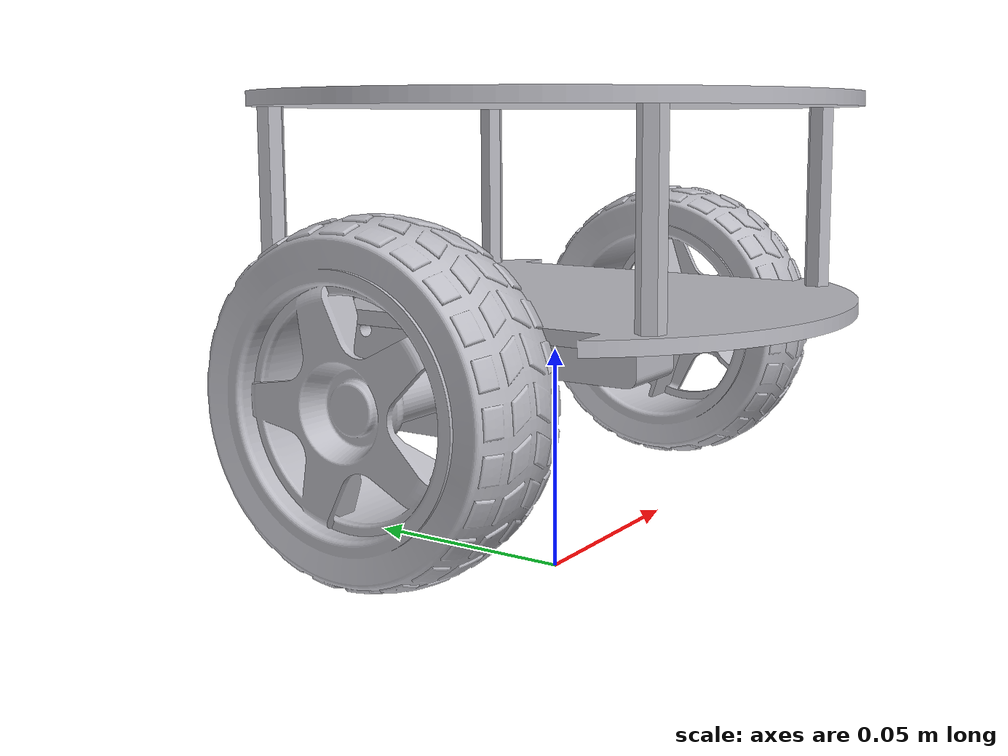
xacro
<?xml version="1.0" ?>
<robot name="omni_bot" xmlns:xacro="http://www.ros.org/wiki/xacro">

<xacro:include filename="materials.xacro" />
<xacro:include filename="omni_bot.trans" />
<xacro:include filename="omni_bot.gazebo" />

<link name="base_link">
  <inertial>
    <origin xyz="0.0 -8.775547676189062e-18 0.06149999999999999" rpy="0 0 0"/>
    <mass value="0.25424101977594304"/>
    <inertia ixx="0.000308" iyy="0.000163" izz="0.00047" ixy="-0.0" iyz="-0.0" ixz="-0.0"/>
  </inertial>
  <visual>
    <origin xyz="0 0 0" rpy="0 0 0"/>
    <geometry>
      <mesh filename="package://omni_bot_description/meshes/base_link.stl" scale="0.001 0.001 0.001"/>
    </geometry>
    <material name="silver"/>
  </visual>
  <collision>
    <origin xyz="0 0 0" rpy="0 0 0"/>
    <geometry>
      <mesh filename="package://omni_bot_description/meshes/base_link.stl" scale="0.001 0.001 0.001"/>
    </geometry>
  </collision>
</link>

<link name="Component4_1">
  <inertial>
    <origin xyz="0.039999999999999994 -0.045 0.07999999999999999" rpy="0 0 0"/>
    <mass value="0.006798299419707871"/>
    <inertia ixx="1e-06" iyy="1e-06" izz="0.0" ixy="-0.0" iyz="0.0" ixz="-0.0"/>
  </inertial>
  <visual>
    <origin xyz="0.0 -0.0 -0.003" rpy="0 0 0"/>
    <geometry>
      <mesh filename="package://omni_bot_description/meshes/Component4_1.stl" scale="0.001 0.001 0.001"/>
    </geometry>
    <material name="silver"/>
  </visual>
  <collision>
    <origin xyz="0.0 -0.0 -0.003" rpy="0 0 0"/>
    <geometry>
      <mesh filename="package://omni_bot_description/meshes/Component4_1.stl" scale="0.001 0.001 0.001"/>
    </geometry>
  </collision>
</link>

<link name="Component5_1">
  <inertial>
    <origin xyz="-0.04 -0.045 0.08" rpy="0 0 0"/>
    <mass value="0.00679829941970783"/>
    <inertia ixx="1e-06" iyy="1e-06" izz="0.0" ixy="-0.0" iyz="0.0" ixz="0.0"/>
  </inertial>
  <visual>
    <origin xyz="-0.0 -0.0 -0.003" rpy="0 0 0"/>
    <geometry>
      <mesh filename="package://omni_bot_description/meshes/Component5_1.stl" scale="0.001 0.001 0.001"/>
    </geometry>
    <material name="silver"/>
  </visual>
  <collision>
    <origin xyz="-0.0 -0.0 -0.003" rpy="0 0 0"/>
    <geometry>
      <mesh filename="package://omni_bot_description/meshes/Component5_1.stl" scale="0.001 0.001 0.001"/>
    </geometry>
  </collision>
</link>

<link name="Component2_1">
  <inertial>
    <origin xyz="-0.040000000000000015 0.045 0.08" rpy="0 0 0"/>
    <mass value="0.006798299419707869"/>
    <inertia ixx="1e-06" iyy="1e-06" izz="0.0" ixy="0.0" iyz="-0.0" ixz="0.0"/>
  </inertial>
  <visual>
    <origin xyz="0.0 -0.0 -0.003" rpy="0 0 0"/>
    <geometry>
      <mesh filename="package://omni_bot_description/meshes/Component2_1.stl" scale="0.001 0.001 0.001"/>
    </geometry>
    <material name="silver"/>
  </visual>
  <collision>
    <origin xyz="0.0 -0.0 -0.003" rpy="0 0 0"/>
    <geometry>
      <mesh filename="package://omni_bot_description/meshes/Component2_1.stl" scale="0.001 0.001 0.001"/>
    </geometry>
  </collision>
</link>

<link name="Component3_1">
  <inertial>
    <origin xyz="0.04 0.045 0.08" rpy="0 0 0"/>
    <mass value="0.006798299419707891"/>
    <inertia ixx="1e-06" iyy="1e-06" izz="0.0" ixy="0.0" iyz="-0.0" ixz="0.0"/>
  </inertial>
  <visual>
    <origin xyz="-0.0 -0.0 -0.003" rpy="0 0 0"/>
    <geometry>
      <mesh filename="package://omni_bot_description/meshes/Component3_1.stl" scale="0.001 0.001 0.001"/>
    </geometry>
    <material name="silver"/>
  </visual>
  <collision>
    <origin xyz="-0.0 -0.0 -0.003" rpy="0 0 0"/>
    <geometry>
      <mesh filename="package://omni_bot_description/meshes/Component3_1.stl" scale="0.001 0.001 0.001"/>
    </geometry>
  </collision>
</link>

<link name="Component6_1">
  <inertial>
    <origin xyz="-0.04000000000000001 0.045 0.0915" rpy="0 0 0"/>
    <mass value="0.31258454204136765"/>
    <inertia ixx="0.00033" iyy="0.00033" izz="0.00066" ixy="-0.0" iyz="-0.0" ixz="-0.0"/>
  </inertial>
  <visual>
    <origin xyz="-0.04 0.045 -0.013" rpy="0 0 0"/>
    <geometry>
      <mesh filename="package://omni_bot_description/meshes/Component6_1.stl" scale="0.001 0.001 0.001"/>
    </geometry>
    <material name="silver"/>
  </visual>
  <collision>
    <origin xyz="-0.04 0.045 -0.013" rpy="0 0 0"/>
    <geometry>
      <mesh filename="package://omni_bot_description/meshes/Component6_1.stl" scale="0.001 0.001 0.001"/>
    </geometry>
  </collision>
</link>

<link name="motor_v1_1">
  <inertial>
    <origin xyz="0.030133799620471084 0.018891947266950343 -0.010991312736714436" rpy="0 0 0"/>
    <mass value="0.18087096282543216"/>
    <inertia ixx="6.1e-05" iyy="1.2e-05" izz="6e-05" ixy="-1e-06" iyz="-0.0" ixz="-0.0"/>
  </inertial>
  <visual>
    <origin xyz="0.0 -0.0 -0.06" rpy="0 0 0"/>
    <geometry>
      <mesh filename="package://omni_bot_description/meshes/motor_v1_1.stl" scale="0.001 0.001 0.001"/>
    </geometry>
    <material name="silver"/>
  </visual>
  <collision>
    <origin xyz="0.0 -0.0 -0.06" rpy="0 0 0"/>
    <geometry>
      <mesh filename="package://omni_bot_description/meshes/motor_v1_1.stl" scale="0.001 0.001 0.001"/>
    </geometry>
  </collision>
</link>

<link name="left_motor_1">
  <inertial>
    <origin xyz="-0.02986620035882674 0.018891947084277598 -0.01100868853954285" rpy="0 0 0"/>
    <mass value="0.1808709618205079"/>
    <inertia ixx="6.1e-05" iyy="1.2e-05" izz="6e-05" ixy="-1e-06" iyz="0.0" ixz="0.0"/>
  </inertial>
  <visual>
    <origin xyz="0.0 -0.0 -0.06" rpy="0 0 0"/>
    <geometry>
      <mesh filename="package://omni_bot_description/meshes/left_motor_1.stl" scale="0.001 0.001 0.001"/>
    </geometry>
    <material name="silver"/>
  </visual>
  <collision>
    <origin xyz="0.0 -0.0 -0.06" rpy="0 0 0"/>
    <geometry>
      <mesh filename="package://omni_bot_description/meshes/left_motor_1.stl" scale="0.001 0.001 0.001"/>
    </geometry>
  </collision>
</link>

<link name="Wheel_left_1">
  <inertial>
    <origin xyz="0.011127088813369782 3.539970000780105e-08 -3.9179267656563876e-08" rpy="0 0 0"/>
    <mass value="0.1680179461346143"/>
    <inertia ixx="0.000114" iyy="6.8e-05" izz="6.8e-05" ixy="-0.0" iyz="-0.0" ixz="0.0"/>
  </inertial>
  <visual>
    <origin xyz="-0.049 -0.00075 -0.049" rpy="0 0 0"/>
    <geometry>
      <mesh filename="package://omni_bot_description/meshes/Wheel_left_1.stl" scale="0.001 0.001 0.001"/>
    </geometry>
    <material name="silver"/>
  </visual>
  <collision>
    <origin xyz="-0.049 -0.00075 -0.049" rpy="0 0 0"/>
    <geometry>
      <mesh filename="package://omni_bot_description/meshes/Wheel_left_1.stl" scale="0.001 0.001 0.001"/>
    </geometry>
  </collision>
</link>

<link name="Wheel_v1_1">
  <inertial>
    <origin xyz="-0.011127088813369719 3.539970000595791e-08 3.91792676288083e-08" rpy="0 0 0"/>
    <mass value="0.1680179461346143"/>
    <inertia ixx="0.000114" iyy="6.8e-05" izz="6.8e-05" ixy="0.0" iyz="0.0" ixz="0.0"/>
  </inertial>
  <visual>
    <origin xyz="0.049 -0.00075 -0.049" rpy="0 0 0"/>
    <geometry>
      <mesh filename="package://omni_bot_description/meshes/Wheel_v1_1.stl" scale="0.001 0.001 0.001"/>
    </geometry>
    <material name="silver"/>
  </visual>
  <collision>
    <origin xyz="0.049 -0.00075 -0.049" rpy="0 0 0"/>
    <geometry>
      <mesh filename="package://omni_bot_description/meshes/Wheel_v1_1.stl" scale="0.001 0.001 0.001"/>
    </geometry>
  </collision>
</link>

<joint name="Rigid 1" type="fixed">
  <origin xyz="0.0 0.0 0.003" rpy="0 0 0"/>
  <parent link="base_link"/>
  <child link="Component4_1"/>
</joint>

<joint name="Rigid 2" type="fixed">
  <origin xyz="0.0 0.0 0.003" rpy="0 0 0"/>
  <parent link="base_link"/>
  <child link="Component5_1"/>
</joint>

<joint name="Rigid 3" type="fixed">
  <origin xyz="0.0 0.0 0.003" rpy="0 0 0"/>
  <parent link="base_link"/>
  <child link="Component2_1"/>
</joint>

<joint name="Rigid 4" type="fixed">
  <origin xyz="0.0 0.0 0.003" rpy="0 0 0"/>
  <parent link="base_link"/>
  <child link="Component3_1"/>
</joint>

<joint name="Rigid 5" type="fixed">
  <origin xyz="0.04 -0.045 0.01" rpy="0 0 0"/>
  <parent link="Component4_1"/>
  <child link="Component6_1"/>
</joint>

<joint name="motor1" type="fixed">
  <origin xyz="0.0 0.0 0.06" rpy="0 0 0"/>
  <parent link="base_link"/>
  <child link="motor_v1_1"/>
</joint>

<joint name="motor2" type="fixed">
  <origin xyz="0.0 0.0 0.06" rpy="0 0 0"/>
  <parent link="base_link"/>
  <child link="left_motor_1"/>
</joint>

<joint name="Revolute 8" type="continuous">
  <origin xyz="0.049 0.00075 -0.011" rpy="0 0 0"/>
  <parent link="motor_v1_1"/>
  <child link="Wheel_left_1"/>
  <axis xyz="1.0 0.0 0.0"/>
</joint>

<joint name="Revolute 9" type="continuous">
  <origin xyz="-0.049 0.00075 -0.011" rpy="0 0 0"/>
  <parent link="left_motor_1"/>
  <child link="Wheel_v1_1"/>
  <axis xyz="1.0 -0.0 0.0"/>
</joint>

</robot>

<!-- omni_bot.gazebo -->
<robot name="omni_bot" xmlns:xacro="http://www.ros.org/wiki/xacro" >

<xacro:property name="body_color" value="Gazebo/Silver" />

<gazebo>
  <plugin name="control" filename="libgazebo_ros_control.so"/>
</gazebo>
<gazebo reference="base_link">
  <material>${body_color}</material>
  <mu1>0.2</mu1>
  <mu2>0.2</mu2>
  <selfCollide>true</selfCollide>
  <gravity>true</gravity>
</gazebo>

<gazebo reference="Component4_1">
  <material>${body_color}</material>
  <mu1>0.2</mu1>
  <mu2>0.2</mu2>
  <selfCollide>true</selfCollide>
</gazebo>

<gazebo reference="Component5_1">
  <material>${body_color}</material>
  <mu1>0.2</mu1>
  <mu2>0.2</mu2>
  <selfCollide>true</selfCollide>
</gazebo>

<gazebo reference="Component2_1">
  <material>${body_color}</material>
  <mu1>0.2</mu1>
  <mu2>0.2</mu2>
  <selfCollide>true</selfCollide>
</gazebo>

<gazebo reference="Component3_1">
  <material>${body_color}</material>
  <mu1>0.2</mu1>
  <mu2>0.2</mu2>
  <selfCollide>true</selfCollide>
</gazebo>

<gazebo reference="Component6_1">
  <material>${body_color}</material>
  <mu1>0.2</mu1>
  <mu2>0.2</mu2>
  <selfCollide>true</selfCollide>
</gazebo>

<gazebo reference="motor_v1_1">
  <material>${body_color}</material>
  <mu1>0.2</mu1>
  <mu2>0.2</mu2>
  <selfCollide>true</selfCollide>
</gazebo>

<gazebo reference="left_motor_1">
  <material>${body_color}</material>
  <mu1>0.2</mu1>
  <mu2>0.2</mu2>
  <selfCollide>true</selfCollide>
</gazebo>

<gazebo reference="Wheel_left_1">
  <material>${body_color}</material>
  <mu1>0.2</mu1>
  <mu2>0.2</mu2>
  <selfCollide>true</selfCollide>
</gazebo>

<gazebo reference="Wheel_v1_1">
  <material>${body_color}</material>
  <mu1>0.2</mu1>
  <mu2>0.2</mu2>
  <selfCollide>true</selfCollide>
</gazebo>

</robot>
